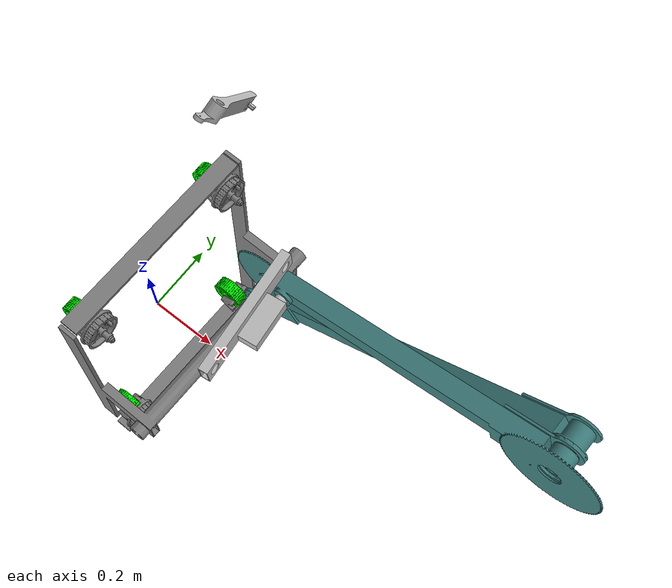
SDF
<?xml version="1.0" encoding="utf-8"?>
<sdf version="1.5">
  <model name="SimSwerveBot3">
        <pose>-0.000197 -0.000161 0.095369 1.56818 -0.000125 1.55183</pose>

    <link name="Body">
      <gravity>1</gravity>
      <self_collide>0</self_collide>
      <pose>0.002226 0.01011 0.122431 1.56818 -0.000125 1.55183</pose>
      <must_be_base_link>1</must_be_base_link>
      <velocity_decay>
        <linear>0</linear>
        <angular>0</angular>
      </velocity_decay>
      <inertial>
        <mass>100</mass>
        <pose>0 0 0 0 0 0</pose>
        <inertia>
          <ixx>0.281462866767804</ixx>
          <ixy>0.00534071773862858</ixy>
          <ixz>0.00063191111485271</ixz>
          <iyy>0.688565334814199</iyy>
          <iyz>0.00210804924810935</iyz>
          <izz>0.474279088453001</izz>
        </inertia>
      </inertial>
      <collision name="Body_collision">
        <pose>-0.466812853283889 -0.02705559157244 -0.00301802987182291 0 0 0</pose>
        <geometry>
          <mesh>
            <scale>1 1 1</scale>
            <uri>model://SimSwerveBot3/meshes/Body_col.STL</uri>
          </mesh>
        </geometry>
        <surface>
          <contact>
            <ode />
          </contact>
          <friction>
            <ode>
              <mu>0</mu>
              <mu2>0</mu2>
            </ode>
          </friction>
        </surface>
      </collision>
      <visual name="Body_visual">
        <pose>-0.466812853283889 -0.02705559157244 -0.00301802987182291 0 0 0</pose>
        <material>
          <ambient>0.501960784313725 0.501960784313725 0.501960784313725 1</ambient>
          <diffuse>0.501960784313725 0.501960784313725 0.501960784313725 1</diffuse>
        </material>
        <geometry>
          <mesh>
            <scale>1 1 1</scale>
            <uri>model://SimSwerveBot3/meshes/Body.STL</uri>
          </mesh>
        </geometry>
      </visual>
    </link>

    <link name="FRdrive">
      <gravity>1</gravity>
      <self_collide>0</self_collide>
          <pose>0.217549 0.359272 0.098944 1.56413 -0.000125 1.55183</pose>
      <must_be_base_link>0</must_be_base_link>
       <velocity_decay>
        <linear>0</linear>
        <angular>0.01</angular>
      </velocity_decay>
      <inertial>
        <mass>1</mass>
        <pose>0 0 0 0 0 0</pose>
      </inertial>
      <visual name="FRdrive_visual">
        <pose>-0.81999064385272 -0.00308940755423872 -0.211618131690221 0 0 0</pose>
        <material>
          <ambient>0.501960784313725 0.501960784313725 0.501960784313725 1</ambient>
          <diffuse>0.501960784313725 0.501960784313725 0.501960784313725 1</diffuse>
        </material>
        <geometry>
          <mesh>
            <scale>1 1 1</scale>
            <uri>model://SimSwerveBot3/meshes/FRdrive.STL</uri>
          </mesh>
        </geometry>
      </visual>
    </link>
    <joint name="Body-FRdrive" type="revolute">
      <parent>Body</parent>
      <child>FRdrive</child>
      <pose>0.0270286124814588 0 0.027225807185676 0 0 4.71238898038469</pose>
      <axis>
        <xyz>0 1 0</xyz>
        <dynamics>
          <damping>1</damping>
          <friction>1</friction>
        </dynamics>
      </axis>
    </joint>
    <link name="FRwheel">
      <gravity>1</gravity>
      <self_collide>0</self_collide>
          <pose>0.247258 0.38575 0.05061 1.57334 -5.6e-05 1.55183</pose>
      <must_be_base_link>0</must_be_base_link>
      <velocity_decay>
        <linear>0</linear>
        <angular>0.002</angular>
      </velocity_decay>
      <inertial>
        <mass>1</mass>
        <pose>0 0 0 0 0 0</pose>
      </inertial>
      <collision name="FRwheel_collision">
        <pose>-0.847019150986402 0.0454407782959989 -0.240498070256203 0 0 0</pose>
        <geometry>
          <mesh>
            <scale>1 1 1</scale>
            <uri>model://SimSwerveBot3/meshes/FRwheel_col.STL</uri>
          </mesh>
        </geometry>
        <surface>
          <contact>
             <ode>
              <max_vel>0.1</max_vel>
              <soft_cfm>0.8</soft_cfm>
              <soft_erp>0.8</soft_erp>
              <kd>25</kd>
              <kp>1e6</kp>
              <min_depth>0.0001</min_depth>
            </ode>
          </contact>
          <friction>
            <ode>
              <mu>1</mu>
              <mu2>1</mu2>
            </ode>
          </friction>
        </surface>
      </collision>
      <visual name="FRwheel_visual">
        <pose>-0.847019150986402 0.0454407782959989 -0.240498070256203 0 0 0</pose>
        <material>
          <ambient>0 1 0 1</ambient>
          <diffuse>0 1 0 1</diffuse>
        </material>
        <geometry>
          <mesh>
            <scale>1 1 1</scale>
            <uri>model://SimSwerveBot3/meshes/FRwheel.STL</uri>
          </mesh>
        </geometry>
      </visual>
    </link>
    <joint name="FRdrive-FRwheel" type="revolute">
      <parent>FRdrive</parent>
      <child>FRwheel</child>
      <pose>1.25638072463463E-05 0.00011429545755863 -9.46325306450113E-08 0 4.7199209919262 6.28318530717959</pose>
      <axis>
        <xyz>0 0 -1</xyz>
        <dynamics>
          <damping>1</damping>
          <friction>1</friction>
        </dynamics>
      </axis>
    </joint>
    <link name="FLdrive">
      <gravity>1</gravity>
      <self_collide>0</self_collide>
          <pose>-0.229243 0.394774 0.090841 1.56414 -0.000127 1.55183</pose>
      <must_be_base_link>0</must_be_base_link>
      <velocity_decay>
        <linear>0</linear>
        <angular>0.01</angular>
      </velocity_decay>
      <inertial>
        <mass>1</mass>
        <pose>0 0 0 0 0 0</pose>
      </inertial>
      <visual name="FLdrive_visual">
        <pose>-0.847010431546437 0.00398782218945027 0.235785793407349 0 0 0</pose>
        <material>
          <ambient>0.501960784313725 0.501960784313725 0.501960784313725 1</ambient>
          <diffuse>0.501960784313725 0.501960784313725 0.501960784313725 1</diffuse>
        </material>
        <geometry>
          <mesh>
            <scale>1 1 1</scale>
            <uri>model://SimSwerveBot3/meshes/FLdrive.STL</uri>
          </mesh>
        </geometry>
      </visual>
    </link>
    <joint name="Body-FLdrive" type="revolute">
      <parent>Body</parent>
      <child>FLdrive</child>
      <pose>8.82478774166806E-06 5.20417042793042E-18 -0.00162026771675042 0 6.28318530717959 4.71238898038469</pose>
      <axis>
        <xyz>0 1 0</xyz>
        <dynamics>
          <damping>1</damping>
          <friction>1</friction>
        </dynamics>
      </axis>
    </joint>
    <link name="FLwheel">
      <gravity>1</gravity>
      <self_collide>0</self_collide>
          <pose>-0.228939 0.394843 0.049572 1.56975 -9.7e-05 1.55183</pose>
      <must_be_base_link>0</must_be_base_link>
      <velocity_decay>
        <linear>0</linear>
        <angular>0.002</angular>
      </velocity_decay>
      <inertial>
        <mass>0.123981363237525</mass>
        <pose>0 0 0 0 0 0</pose>
      </inertial>
      <collision name="FLwheel_collision">
        <pose>-0.847044197483843 0.0454363391768107 0.235751817242042 0 0 0</pose>
        <geometry>
          <mesh>
            <scale>1 1 1</scale>
            <uri>model://SimSwerveBot3/meshes/FLwheel_col.STL</uri>
          </mesh>
        </geometry>
        <surface>
          <contact>
             <ode>
              <max_vel>0.1</max_vel>
              <soft_cfm>0.8</soft_cfm>
              <soft_erp>0.8</soft_erp>
              <kd>25</kd>
              <kp>1e6</kp>
              <min_depth>0.001</min_depth>
            </ode>
          </contact>
          <friction>
            <ode>
              <mu>1</mu>
              <mu2>1</mu2>
            </ode>
          </friction>
        </surface>
      </collision>
      <visual name="FLwheel_visual">
        <pose>-0.847044197483843 0.0454363391768107 0.235751817242042 0 0 0</pose>
        <material>
          <ambient>0 1 0 1</ambient>
          <diffuse>0 1 0 1</diffuse>
        </material>
        <geometry>
          <mesh>
            <scale>1 1 1</scale>
            <uri>model://SimSwerveBot3/meshes/FLwheel.STL</uri>
          </mesh>
        </geometry>
      </visual>
    </link>
    <joint name="FLdrive-FLwheel" type="revolute">
      <parent>FLdrive</parent>
      <child>FLwheel</child>
      <pose>-3.39534051447821E-05 0.000109856338368929 -1.84997501873063E-07 0 4.71783749638594 5.39814581483388E-16</pose>
      <axis>
        <xyz>0 0 -1</xyz>
        <dynamics>
          <damping>1</damping>
          <friction>1</friction>
        </dynamics>
      </axis>
    </joint>
    <link name="BRdrive">
      <gravity>1</gravity>
      <self_collide>0</self_collide>
          <pose>0.230385 -0.394431 0.070702 1.57706 -0.000104 1.55183</pose>
      <must_be_base_link>0</must_be_base_link>
      <velocity_decay>
        <linear>0</linear>
        <angular>0.01</angular>
      </velocity_decay>
      <inertial>
        <mass>1</mass>
        <pose>0 0 0 0 0 0</pose>
      </inertial>
      <visual name="BRdrive_visual">
        <pose>-0.0666739049592076 0.0252568719347445 -0.238665521107992 0 0 0</pose>
        <material>
          <ambient>0.501960784313725 0.501960784313725 0.501960784313725 1</ambient>
          <diffuse>0.501960784313725 0.501960784313725 0.501960784313725 1</diffuse>
        </material>
        <geometry>
          <mesh>
            <scale>1 1 1</scale>
            <uri>model://SimSwerveBot3/meshes/BRdrive.STL</uri>
          </mesh>
        </geometry>
      </visual>
    </link>
    <joint name="Body-BRdrive" type="revolute">
      <parent>Body</parent>
      <child>BRdrive</child>
      <pose>1.09504079234823E-06 0 0.000178417767905031 0 6.28318530717959 4.71238898038469</pose>
      <axis>
        <xyz>0 1 0</xyz>
        <dynamics>
          <damping>1</damping>
          <friction>1</friction>
        </dynamics>
      </axis>
    </joint>
    <link name="BRwheel">
      <gravity>1</gravity>
      <self_collide>0</self_collide>
          <pose>0.228787 -0.394401 0.050531 1.57028 -0.000146 1.55183</pose>
      <must_be_base_link>0</must_be_base_link>
      <velocity_decay>
        <linear>0</linear>
        <angular>0.002</angular>
      </velocity_decay>
      <inertial>
        <mass>1</mass>
        <pose>0 0 0 0 0 0</pose>
      </inertial>
      <collision name="BRwheel_collision">
        <pose>-0.066677501205518 0.0454407782968187 -0.237189809560838 0 0 0</pose>
        <geometry>
          <mesh>
            <scale>1 1 1</scale>
            <uri>model://SimSwerveBot3/meshes/BRwheel_col.STL</uri>
          </mesh>
        </geometry>
        <surface>
          <contact>
            <ode>
              <max_vel>0.1</max_vel>
              <soft_cfm>0.8</soft_cfm>
              <soft_erp>0.8</soft_erp>
              <kd>25</kd>
              <kp>1e6</kp>
              <min_depth>0.0001</min_depth>
            </ode>
          </contact>
          <friction>
            <ode>
              <mu>1</mu>
              <mu2>1</mu2>
            </ode>
          </friction>
        </surface>
      </collision>
      <visual name="BRwheel_visual">
        <pose>-0.066677501205518 0.0454407782968187 -0.237189809560838 0 0 0</pose>
        <material>
          <ambient>0 1 0 1</ambient>
          <diffuse>0 1 0 1</diffuse>
        </material>
        <geometry>
          <mesh>
            <scale>1 1 1</scale>
            <uri>model://SimSwerveBot3/meshes/BRwheel.STL</uri>
          </mesh>
        </geometry>
      </visual>
    </link>
    <joint name="BRdrive-BRwheel" type="revolute">
      <parent>BRdrive</parent>
      <child>BRwheel</child>
      <pose>-1.25639304105613E-05 0.000114295458376691 7.6434905293965E-08 0 1.56471272398399 3.14159265358979</pose>
      <axis>
        <xyz>0 0 -1</xyz>
        <dynamics>
          <damping>1</damping>
          <friction>1</friction>
        </dynamics>
      </axis>
    </joint>
    <link name="BLdrive">
      <gravity>1</gravity>
      <self_collide>0</self_collide>
          <pose>-0.247272 -0.385174 0.092077 1.56817 -0.000119 1.55183</pose>
      <must_be_base_link>0</must_be_base_link>
      <velocity_decay>
        <linear>0</linear>
        <angular>0.01</angular>
      </velocity_decay>
      <inertial>
        <mass>1</mass>
        <pose>0 0 0 0 0 0</pose>
      </inertial>
      <visual name="BLdrive_visual">
        <pose>-0.0666627918911016 0.00398782097182643 0.239026308700343 0 0 0</pose>
        <material>
          <ambient>0.501960784313725 0.501960784313725 0.501960784313725 1</ambient>
          <diffuse>0.501960784313725 0.501960784313725 0.501960784313725 1</diffuse>
        </material>
        <geometry>
          <mesh>
            <scale>1 1 1</scale>
            <uri>model://SimSwerveBot3/meshes/BLdrive.STL</uri>
          </mesh>
        </geometry>
      </visual>
    </link>
    <joint name="Body-BLdrive" type="revolute">
      <parent>Body</parent>
      <child>BLdrive</child>
      <pose>1.22081088980014E-05 -1.84389346673253E-10 138.334863892454 0 0 0</pose>
      <axis>
        <xyz>0 1 0</xyz>
        <dynamics>
          <damping>1</damping>
          <friction>1</friction>
        </dynamics>
      </axis>
    </joint>
    <link name="BLwheel">
      <gravity>1</gravity>
      <self_collide>0</self_collide>
          <pose>-0.247199 -0.385159 0.050624 1.57298 -8.3e-05 1.55183</pose>
      <must_be_base_link>0</must_be_base_link>
      <velocity_decay>
        <linear>0</linear>
        <angular>0.002</angular>
      </velocity_decay>
      <inertial>
        <mass>0.123981366006227</mass>
        <pose>0 0 0 0 0 0</pose>
      </inertial>
      <collision name="BLwheel_collision">
        <pose>-0.0666751053477765 0.0454407782959999 0.239060192504404 0 0 0</pose>
        <geometry>
          <mesh>
            <scale>1 1 1</scale>
            <uri>model://SimSwerveBot3/meshes/BLwheel_col.STL</uri>
          </mesh>
        </geometry>
        <surface>
         <contact>
             <ode>
              <max_vel>0.1</max_vel>
              <soft_cfm>0.8</soft_cfm>
              <soft_erp>0.8</soft_erp>
              <kd>25</kd>
              <kp>1e6</kp>
              <min_depth>0.0001</min_depth>
            </ode>
          </contact>
          <friction>
            <ode>
              <mu>1</mu>
              <mu2>1</mu2>
            </ode>
          </friction>
        </surface>
      </collision>
      <visual name="BLwheel_visual">
        <pose>-0.0666751053477765 0.0454407782959999 0.239060192504404 0 0 0</pose>
        <material>
          <ambient>0 1 0 1</ambient>
          <diffuse>0 1 0 1</diffuse>
        </material>
        <geometry>
          <mesh>
            <scale>1 1 1</scale>
            <uri>model://SimSwerveBot3/meshes/BLwheel.STL</uri>
          </mesh>
        </geometry>
      </visual>
    </link>
    <joint name="BLdrive-BLwheel" type="revolute">
      <parent>BLdrive</parent>
      <child>BLwheel</child>
      <pose>-1.25638072462075E-05 0.00011429545755836 9.4632530728278E-08 0 1.56326431525339 3.14159265358979</pose>
      <axis>
        <xyz>0 0 -1</xyz>
        <dynamics>
          <damping>1</damping>
          <friction>1</friction>
        </dynamics>
      </axis>
    </joint>

    <link name="LowerArm">
      <gravity>1</gravity>
      <self_collide>0</self_collide>
          <pose>0.205244 0.282543 0.665276 1.56815 -0.000128 1.55182</pose>
      <must_be_base_link>0</must_be_base_link>
      <velocity_decay>
        <linear>0</linear>
        <angular>0</angular>
      </velocity_decay>
      <inertial>
        <mass>3.19006579837111</mass>
        <pose>0 0 0 0 0 0</pose>
        <inertia>
          <ixx>0.0573004752158579</ixx>
          <ixy>0.0388509565035045</ixy>
          <ixz>0.00215756738631079</ixz>
          <iyy>0.0267256940750842</iyy>
          <iyz>0.0031675240564386</iyz>
          <izz>0.0835009253183463</izz>
        </inertia>
      </inertial>
      <collision name="LowerArm_collision">
        <pose>-0.743107694697595 -0.569352514264947 -0.202400997868789 0 0 0</pose>
        <geometry>
          <mesh>
            <scale>1 1 1</scale>
            <uri>model://SimSwerveBot3/meshes/LowerArm_col.STL</uri>
          </mesh>
        </geometry>
        <surface>
          <contact>
            <ode />
          </contact>
          <friction>
            <ode>
              <mu>0</mu>
              <mu2>0</mu2>
            </ode>
          </friction>
        </surface>
      </collision>
      <visual name="LowerArm_visual">
        <pose>-0.743107694697595 -0.569352514264947 -0.202400997868789 0 0 0</pose>
        <material>
          <ambient>0.250980392156863 0.501960784313725 0.501960784313725 1</ambient>
          <diffuse>0.250980392156863 0.501960784313725 0.501960784313725 1</diffuse>
        </material>
        <geometry>
          <mesh>
            <scale>1 1 1</scale>
            <uri>model://SimSwerveBot3/meshes/LowerArm.STL</uri>
          </mesh>
        </geometry>
      </visual>
    </link>
    <joint name="Body-LowerArm" type="revolute">
      <parent>Body</parent>
      <child>LowerArm</child>
      <pose>-0.288320694697595 -0.423302514264947 0 0 1.5707963267949 0</pose>
      <axis>
        <xyz>1 0 0</xyz>
        <dynamics>
          <damping>0</damping>
          <friction>0</friction>
        </dynamics>
        <limit>
          <upper>0</upper>
          <lower>0</lower>
          <effort>1</effort>
        </limit>
      </axis>
    </joint>

    <link name="UpperArm">
      <gravity>1</gravity>
      <self_collide>0</self_collide>
          <pose>0.140511 0.51799 0.805536 1.56787 -9.5e-05 1.55222</pose>
      <must_be_base_link>0</must_be_base_link>
      <velocity_decay>
        <linear>0</linear>
        <angular>0</angular>
      </velocity_decay>
      <inertial>
        <mass>2.3570164391411</mass>
        <pose>0 0 0 0 0 0</pose>
        <inertia>
          <ixx>0.0327522810455929</ixx>
          <ixy>0.00899866466757545</ixy>
          <ixz>0.000721787313956972</ixz>
          <iyy>0.00274871570596632</iyy>
          <iyz>0.00260642623951405</iyz>
          <izz>0.0349873948280755</izz>
        </inertia>
      </inertial>
      <collision name="UpperArm_collision">
        <pose>-0.977301626743842 -0.709767313781583 -0.133465984242475 0 0 0</pose>
        <geometry>
          <mesh>
            <scale>1 1 1</scale>
            <uri>model://SimSwerveBot3/meshes/UpperArm_col.STL</uri>
          </mesh>
        </geometry>
        <surface>
          <contact>
            <ode />
          </contact>
          <friction>
            <ode>
              <mu>0</mu>
              <mu2>0</mu2>
            </ode>
          </friction>
        </surface>
      </collision>
      <visual name="UpperArm_visual">
        <pose>-0.977301626743842 -0.709767313781583 -0.133465984242475 0 0 0</pose>
        <material>
          <ambient>0.250980392156863 0.501960784313725 0.501960784313725 1</ambient>
          <diffuse>0.250980392156863 0.501960784313725 0.501960784313725 1</diffuse>
        </material>
        <geometry>
          <mesh>
            <scale>1 1 1</scale>
            <uri>model://SimSwerveBot3/meshes/UpperArm.STL</uri>
          </mesh>
        </geometry>
      </visual>
    </link>
    <joint name="LowerArm-UpperArm" type="revolute">
      <parent>LowerArm</parent>
      <child>UpperArm</child>
      <pose>0.0949078106668886 0.34275847396224 0 0 4.71238898038469 0</pose>
      <axis>
        <xyz>1 0 0</xyz>
        <dynamics>
          <damping>0</damping>
          <friction>0</friction>
        </dynamics>
        <limit>
          <upper>0</upper>
          <lower>0</lower>
          <effort>1</effort>
        </limit>
      </axis>
    </joint>

    <link name="GripperRotate">
      <gravity>1</gravity>
      <self_collide>0</self_collide>
          <pose>0.040448 0.408546 0.400952 1.56618 -0.886088 1.55572</pose>
      <must_be_base_link>0</must_be_base_link>
      <velocity_decay>
        <linear>0</linear>
        <angular>0.1</angular>
      </velocity_decay>
      <inertial>
        <mass>0.01</mass>
        <pose>0 0 0 0 0 0</pose>
      </inertial>

      <collision name="GripperRotate_collision">
        <pose>-0.867138888414116 -0.304251355032237 -0.0343039953788267 0 0 0</pose>
        <geometry>
          <mesh>
            <scale>1 1 1</scale>
            <uri>model://SimSwerveBot3/meshes/GripperRotate_col.STL</uri>
          </mesh>
        </geometry>
        <surface>
          <contact>
            <ode />
          </contact>
          <friction>
            <ode>
              <mu>1</mu>
              <mu2>1</mu2>
            </ode>
          </friction>
        </surface>
      </collision>

      <visual name="GripperRotate_visual">
        <pose>-0.867138888414116 -0.304251355032237 -0.0343039953788267 0 0 0</pose>
        <material>
          <ambient>0.752941176470588 0.752941176470588 0.752941176470588 1</ambient>
          <diffuse>0.752941176470588 0.752941176470588 0.752941176470588 1</diffuse>
        </material>
        <geometry>
          <mesh>
            <scale>1 1 1</scale>
            <uri>model://SimSwerveBot3/meshes/GripperRotate.STL</uri>
          </mesh>
        </geometry>
      </visual>
    </link>

    <joint name="UpperArm-GripperRotate" type="revolute">
      <parent>UpperArm</parent>
      <child>GripperRotate</child>
        <pose>-0.001887 -0.000642 -0 3.14159 1.57079 3.14159</pose>
      <axis>
        <xyz>1 0 0</xyz>

        <dynamics>
          <damping>1</damping>
          <friction>1</friction>
        </dynamics>
        <limit>
          <upper>1.5</upper>
          <lower>-0.9</lower>
        </limit>
      </axis>
    </joint>

    <link name="GripperTwist">
      <gravity>1</gravity>
      <self_collide>0</self_collide>
          <pose>-0.00706 0.547837 0.421238 1.6105 -0.885688 1.51965</pose>
      <must_be_base_link>0</must_be_base_link>
      <velocity_decay>
        <linear>0</linear>
        <angular>0.1</angular>
      </velocity_decay>
      <inertial>
       <mass>0.0106209522650121</mass>
        <pose>0 0 0 0 0 0</pose>
      </inertial>

      <collision name="GripperTwist_collision">
        <pose>-0.970338220894427 -0.209879195510606 0.0164580985178202 0 0 0</pose>
        <geometry>
          <mesh>
            <scale>1 1 1</scale>
            <uri>model://SimSwerveBot3/meshes/GripperTwist_col.STL</uri>
          </mesh>
        </geometry>
        <surface>
          <contact>
            <ode />
          </contact>
          <friction>
            <ode>
              <mu>1</mu>
              <mu2>1</mu2>
            </ode>
          </friction>
        </surface>
      </collision>

      <visual name="GripperTwist_visual">
        <pose>-0.970338220894427 -0.209879195510606 0.0164580985178202 0 0 0</pose>
        <material>
          <ambient>0.752941176470588 0.752941176470588 0.752941176470588 1</ambient>
          <diffuse>0.752941176470588 0.752941176470588 0.752941176470588 1</diffuse>
        </material>
        <geometry>
          <mesh>
            <scale>1 1 1</scale>
            <uri>model://SimSwerveBot3/meshes/GripperTwist.STL</uri>
          </mesh>
        </geometry>
      </visual>

      <sensor name="GripperTwistCamera" type="camera">
        <visualize>1</visualize>
        <always_on>1</always_on>
        <pose>0.027422507856745 -0.00627316013977647 0.00272223138191047 0 0 0</pose>
        <camera name="GripperTwistcamera">
          <horizontal_fov>1.5707963267949</horizontal_fov>
          <image>
            <width>320</width>
            <height>240</height>
          </image>
          <clip>
            <near>0.1</near>
            <far>100</far>
          </clip>
        </camera>
      </sensor>
    </link>

    <joint name="GripperRotate-GripperTwist" type="revolute">
      <parent>GripperRotate</parent>
      <child>GripperTwist</child>
      <pose>-0.020871891120782 -0.0149869750218195 0.00672065135518525 0 0 0</pose>
      <axis>
      <xyz>0.812286349216375 0.583258850663008 0</xyz>
       <dynamics>
          <damping>1</damping>
          <friction>1</friction>
        </dynamics>
        <limit>
          <upper>0.1</upper>
          <lower>0</lower>

        </limit>
      </axis>
    </joint>

    <link name="LeftGripper">
      <gravity>1</gravity>
      <self_collide>0</self_collide>
      <pose>0.557320667154498 0.0719869069981106 -0.193435240872313 0 0 0</pose>
      <must_be_base_link>0</must_be_base_link>
      <velocity_decay>
        <linear>0</linear>
        <angular>0.1</angular>
      </velocity_decay>
      <inertial>
        <mass>0.528149142135129</mass>
        <pose>0 0 0 0 0 0</pose>

      </inertial>
      <collision name="LeftGripper_collision">
        <pose>-1.01381492348868 -0.0719869069981117 0.192716301996401 0 0 0</pose>
        <geometry>
          <mesh>
            <scale>1 1 1</scale>
            <uri>model://SimSwerveBot3/meshes/LeftGripper_col.STL</uri>
          </mesh>
        </geometry>
        <surface>
          <contact>
            <ode />
          </contact>
          <friction>
            <ode>
              <mu>0</mu>
              <mu2>0</mu2>
            </ode>
          </friction>
        </surface>
      </collision>
      <visual name="LeftGripper_visual">
        <pose>-1.01381492348868 -0.0719869069981117 0.192716301996401 0 0 0</pose>
        <material>
          <ambient>0.752941176470588 0.752941176470588 0.752941176470588 1</ambient>
          <diffuse>0.752941176470588 0.752941176470588 0.752941176470588 1</diffuse>
        </material>
        <geometry>
          <mesh>
            <scale>1 1 1</scale>
            <uri>model://SimSwerveBot3/meshes/LeftGripper.STL</uri>
          </mesh>
        </geometry>
      </visual>
    </link>
    <joint name="GripperTwist-LeftGripper" type="revolute">
      <parent>GripperTwist</parent>
      <child>LeftGripper</child>
      <pose>0.111890652409923 -0.0215624740650626 138.35185961093 0 0 0</pose>
      <axis>
        <xyz>-0.808622698046812 -0.580628181106082 -0.0948696342827216</xyz>
        <dynamics>
          <damping>0</damping>
          <friction>0</friction>
        </dynamics>
        <limit>
          <upper>0</upper>
          <lower>0</lower>
          <effort>1</effort>
        </limit>
      </axis>
    </joint>

  </model>

</sdf>
